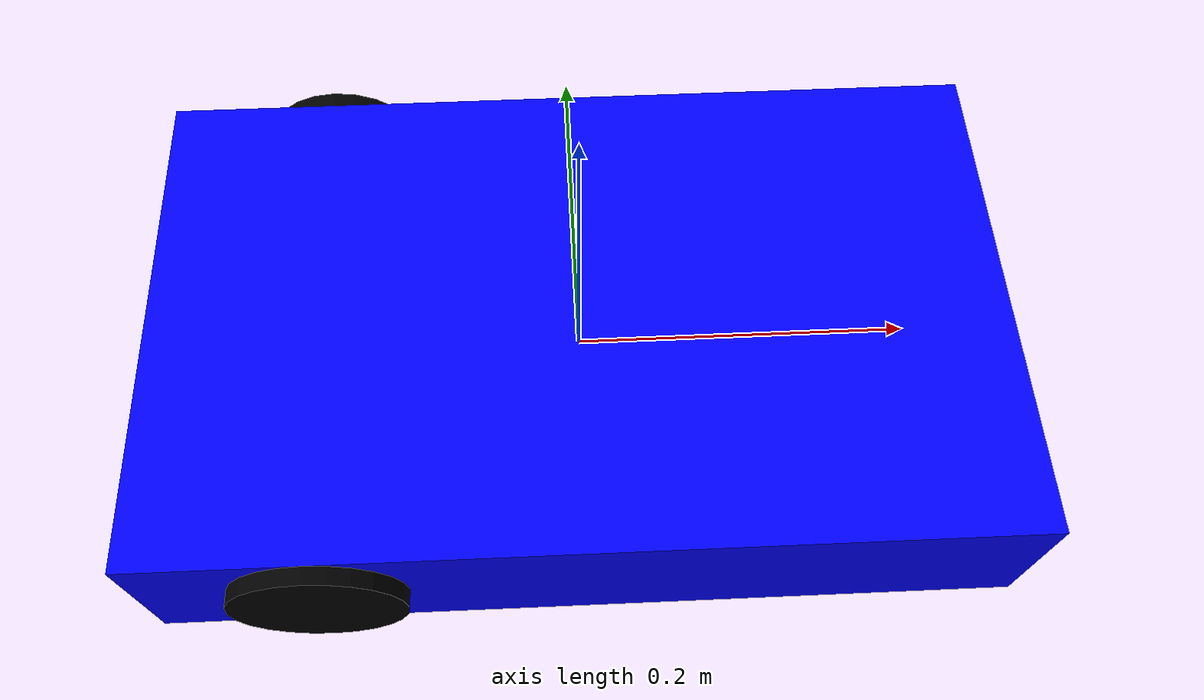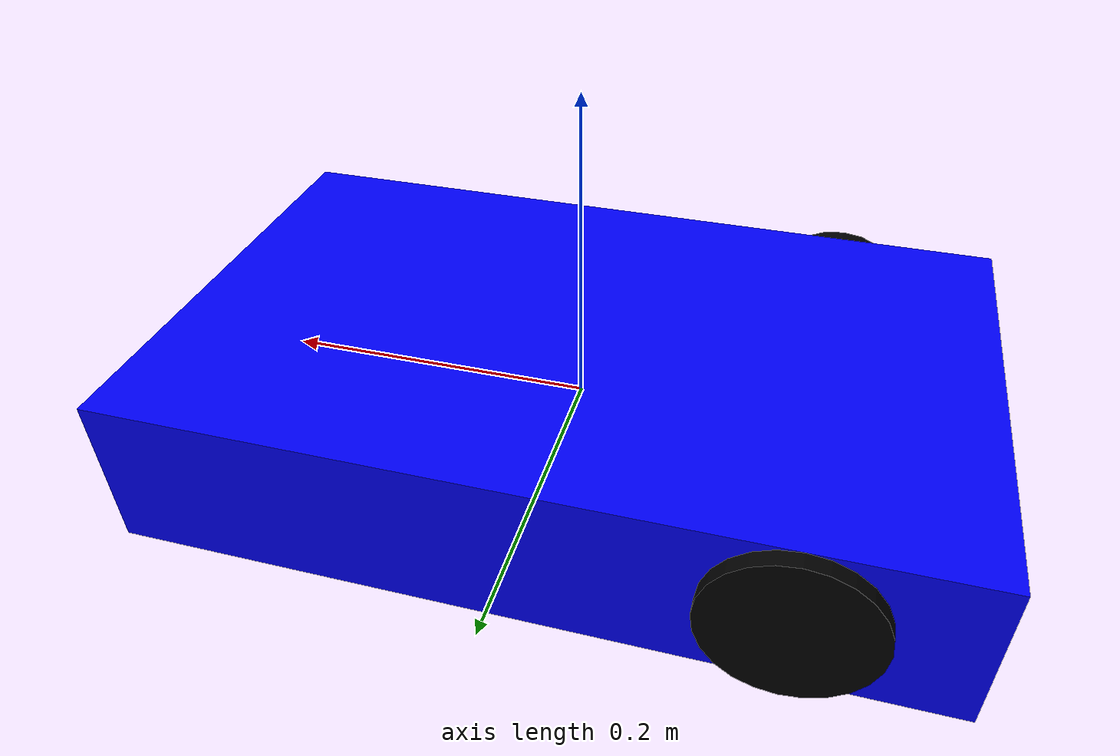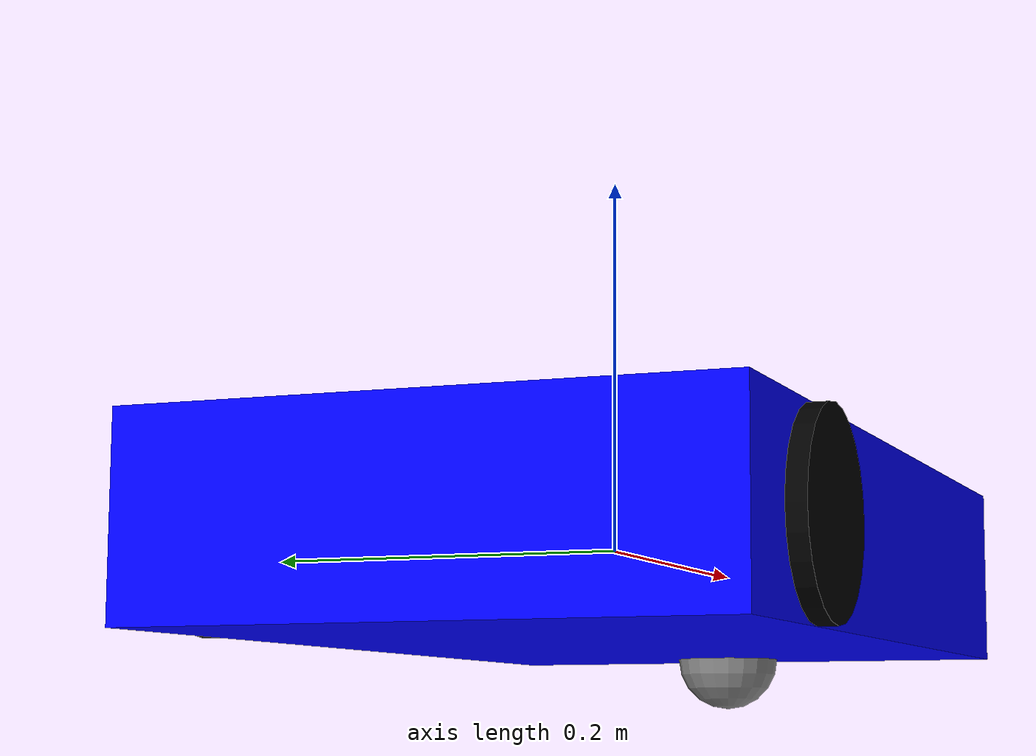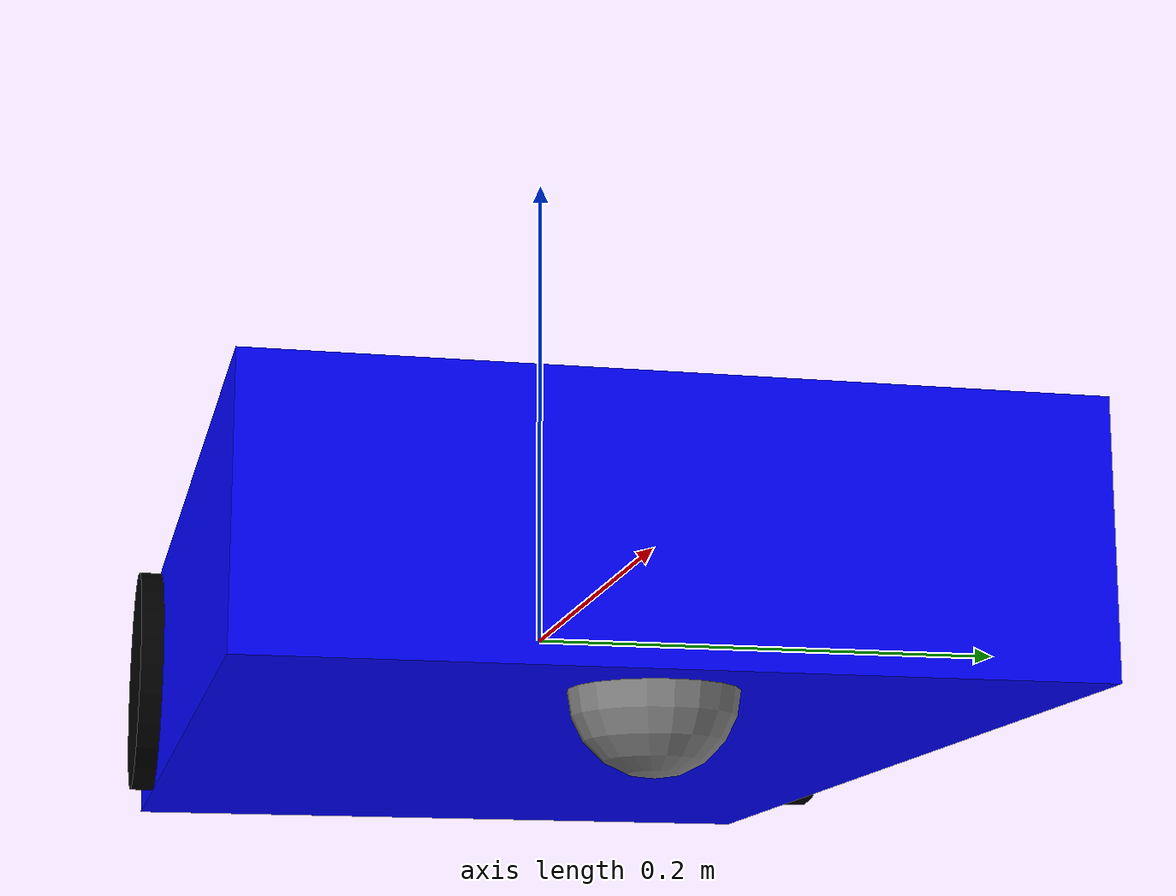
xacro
<?xml version="1.0"?>
<robot name="my_robot">
  <link name="base_link">
    <visual>
      <geometry>
        <box size="0.5 0.3 0.1"/>
      </geometry>
      <material name="blue">
        <color rgba="0 0 1 1"/>
      </material>
    </visual>
    <collision>
      <geometry>
        <box size="0.5 0.3 0.1"/>
      </geometry>
    </collision>
    <inertial>
      <mass value="1.0"/>
      <inertia ixx="0.01" ixy="0" ixz="0" iyy="0.01" iyz="0" izz="0.01"/>
    </inertial>
  </link>

  <link name="left_wheel">
    <visual>
      <geometry>
        <cylinder radius="0.05" length="0.02"/>
      </geometry>
      <material name="black">
        <color rgba="0 0 0 1"/>
      </material>
    </visual>
    <collision>
      <geometry>
        <cylinder radius="0.05" length="0.02"/>
      </geometry>
    </collision>
    <inertial>
      <mass value="0.1"/>
      <inertia ixx="0.0001" ixy="0" ixz="0" iyy="0.0001" iyz="0" izz="0.0001"/>
    </inertial>
  </link>

  <joint name="left_wheel_joint" type="continuous">
    <parent link="base_link"/>
    <child link="left_wheel"/>
    <origin xyz="-0.15 0.15 0" rpy="1.5708 0 0"/>
    <axis xyz="0 0 1"/>
  </joint>

  <link name="right_wheel">
    <visual>
      <geometry>
        <cylinder radius="0.05" length="0.02"/>
      </geometry>
      <material name="black">
        <color rgba="0 0 0 1"/>
      </material>
    </visual>
    <collision>
      <geometry>
        <cylinder radius="0.05" length="0.02"/>
      </geometry>
    </collision>
    <inertial>
      <mass value="0.1"/>
      <inertia ixx="0.0001" ixy="0" ixz="0" iyy="0.0001" iyz="0" izz="0.0001"/>
    </inertial>
  </link>

  <joint name="right_wheel_joint" type="continuous">
    <parent link="base_link"/>
    <child link="right_wheel"/>
    <origin xyz="-0.15 -0.15 0" rpy="1.5708 0 0"/>
    <axis xyz="0 0 1"/>
  </joint>

  <link name="caster_wheel">
    <visual>
      <geometry>
        <sphere radius="0.03"/>
      </geometry>
      <material name="gray">
        <color rgba="0.5 0.5 0.5 1"/>
      </material>
    </visual>
    <collision>
      <geometry>
        <sphere radius="0.03"/>
      </geometry>
    </collision>
    <inertial>
      <mass value="0.05"/>
      <inertia ixx="0.00001" ixy="0" ixz="0" iyy="0.00001" iyz="0" izz="0.00001"/>
    </inertial>
  </link>

  <joint name="caster_joint" type="fixed">
    <parent link="base_link"/>
    <child link="caster_wheel"/>
    <origin xyz="0.2 0 -0.05"/>
  </joint>
</robot>
